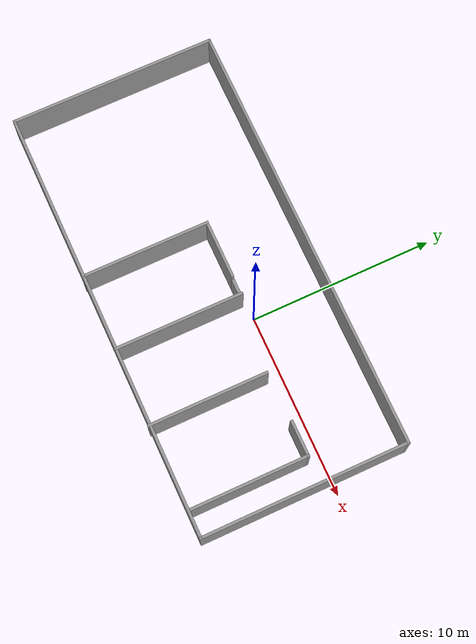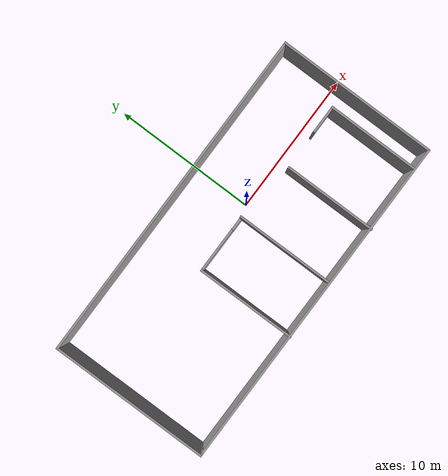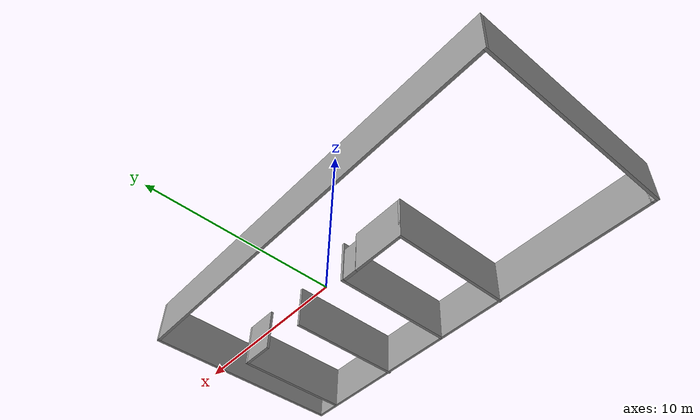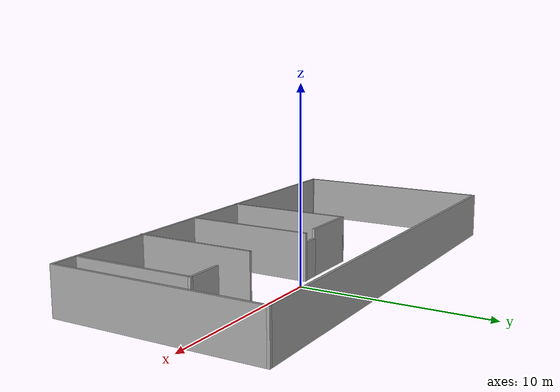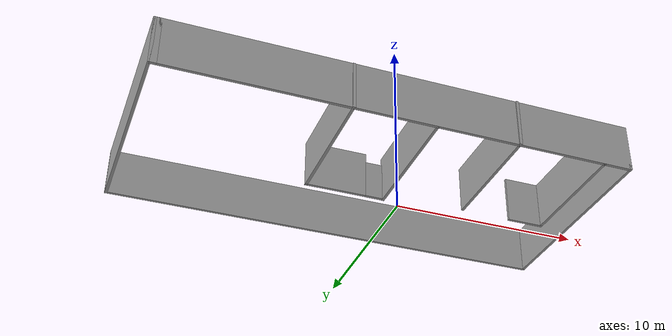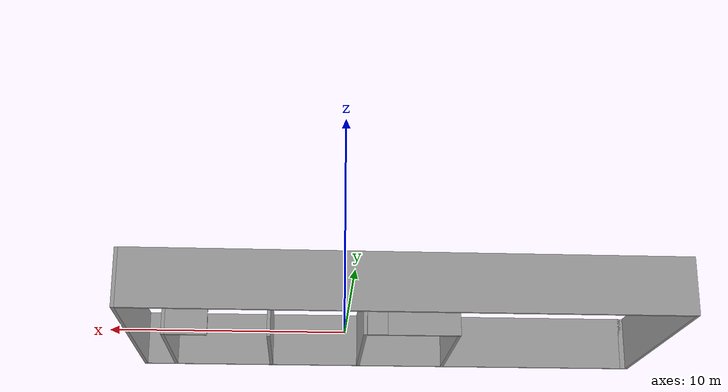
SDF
<?xml version='1.0'?>
<sdf version='1.7'>
  <model name='model1'>
    <pose>-2.44936 -1.61539 0 0 -0 0</pose>
    <link name='Door_2'>
      <collision name='Door_2_Collision'>
        <geometry>
          <box>
            <size>0.9 0.17 2</size>
          </box>
        </geometry>
        <pose>0 0 1 0 -0 0</pose>
      </collision>
      <visual name='Door_2_Visual'>
        <pose>0 0 1 0 -0 0</pose>
        <geometry>
          <box>
            <size>0.9 0.17 2</size>
          </box>
        </geometry>
        <material>
          <script>
            <uri>file://media/materials/scripts/gazebo.material</uri>
            <name>Gazebo/Grey</name>
          </script>
        </material>
      </visual>
      <pose>0.991994 1.30221 0 0 -0 0</pose>
    </link>
    <link name='Wall_23'>
      <collision name='Wall_23_Collision'>
        <geometry>
          <box>
            <size>23.5 0.15 2.5</size>
          </box>
        </geometry>
        <pose>0 0 1.25 0 -0 0</pose>
      </collision>
      <visual name='Wall_23_Visual'>
        <pose>0 0 1.25 0 -0 0</pose>
        <geometry>
          <box>
            <size>23.5 0.15 2.5</size>
          </box>
        </geometry>
        <material>
          <script>
            <uri>file://media/materials/scripts/gazebo.material</uri>
            <name>Gazebo/Grey</name>
          </script>
          <ambient>1 1 1 1</ambient>
        </material>
        <meta>
          <layer>0</layer>
        </meta>
      </visual>
      <pose>0.125 -5.51941 0 0 -0 0</pose>
    </link>
    <link name='Wall_24'>
      <collision name='Wall_24_Collision'>
        <geometry>
          <box>
            <size>11.25 0.15 2.5</size>
          </box>
        </geometry>
        <pose>0 0 1.25 0 -0 0</pose>
      </collision>
      <visual name='Wall_24_Visual'>
        <pose>0 0 1.25 0 -0 0</pose>
        <geometry>
          <box>
            <size>11.25 0.15 2.5</size>
          </box>
        </geometry>
        <material>
          <script>
            <uri>file://media/materials/scripts/gazebo.material</uri>
            <name>Gazebo/Grey</name>
          </script>
          <ambient>1 1 1 1</ambient>
        </material>
        <meta>
          <layer>0</layer>
        </meta>
      </visual>
      <pose>11.8 0.03059 0 0 -0 1.5708</pose>
    </link>
    <link name='Wall_25'>
      <collision name='Wall_25_Collision'>
        <geometry>
          <box>
            <size>23.75 0.15 2.5</size>
          </box>
        </geometry>
        <pose>0 0 1.25 0 -0 0</pose>
      </collision>
      <visual name='Wall_25_Visual'>
        <pose>0 0 1.25 0 -0 0</pose>
        <geometry>
          <box>
            <size>23.75 0.15 2.5</size>
          </box>
        </geometry>
        <material>
          <script>
            <uri>file://media/materials/scripts/gazebo.material</uri>
            <name>Gazebo/Grey</name>
          </script>
          <ambient>1 1 1 1</ambient>
        </material>
        <meta>
          <layer>0</layer>
        </meta>
      </visual>
      <pose>-0 5.58059 0 0 -0 3.14159</pose>
    </link>
    <link name='Wall_26'>
      <collision name='Wall_26_Collision'>
        <geometry>
          <box>
            <size>11.25 0.15 2.5</size>
          </box>
        </geometry>
        <pose>0 0 1.25 0 -0 0</pose>
      </collision>
      <visual name='Wall_26_Visual'>
        <pose>0 0 1.25 0 -0 0</pose>
        <geometry>
          <box>
            <size>11.25 0.15 2.5</size>
          </box>
        </geometry>
        <material>
          <script>
            <uri>file://media/materials/scripts/gazebo.material</uri>
            <name>Gazebo/Grey</name>
          </script>
          <ambient>1 1 1 1</ambient>
        </material>
        <meta>
          <layer>0</layer>
        </meta>
      </visual>
      <pose>-11.8 0.03059 0 0 -0 -1.5708</pose>
    </link>
    <link name='Wall_27'>
      <collision name='Wall_27_Collision'>
        <geometry>
          <box>
            <size>0.4 0.15 2.5</size>
          </box>
        </geometry>
        <pose>0 0 1.25 0 -0 0</pose>
      </collision>
      <visual name='Wall_27_Visual'>
        <pose>0 0 1.25 0 -0 0</pose>
        <geometry>
          <box>
            <size>0.4 0.15 2.5</size>
          </box>
        </geometry>
        <material>
          <script>
            <uri>file://media/materials/scripts/gazebo.material</uri>
            <name>Gazebo/Grey</name>
          </script>
          <ambient>1 1 1 1</ambient>
        </material>
        <meta>
          <layer>0</layer>
        </meta>
      </visual>
      <pose>-11.675 -5.51941 0 0 -0 0</pose>
    </link>
    <link name='Wall_29'>
      <collision name='Wall_29_Collision'>
        <geometry>
          <box>
            <size>7 0.15 2.5</size>
          </box>
        </geometry>
        <pose>0 0 1.25 0 -0 0</pose>
      </collision>
      <visual name='Wall_29_Visual'>
        <pose>0 0 1.25 0 -0 0</pose>
        <geometry>
          <box>
            <size>7 0.15 2.5</size>
          </box>
        </geometry>
        <material>
          <script>
            <uri>file://media/materials/scripts/gazebo.material</uri>
            <name>Gazebo/Grey</name>
          </script>
          <ambient>1 1 1 1</ambient>
        </material>
        <meta>
          <layer>0</layer>
        </meta>
      </visual>
      <pose>-2.58706 -2.125 0 0 -0 1.5708</pose>
    </link>
    <link name='Wall_30'>
      <collision name='Wall_30_Collision'>
        <geometry>
          <box>
            <size>3.25 0.15 2.5</size>
          </box>
        </geometry>
        <pose>0 0 1.25 0 -0 0</pose>
      </collision>
      <visual name='Wall_30_Visual'>
        <pose>0 0 1.25 0 -0 0</pose>
        <geometry>
          <box>
            <size>3.25 0.15 2.5</size>
          </box>
        </geometry>
        <material>
          <script>
            <uri>file://media/materials/scripts/gazebo.material</uri>
            <name>Gazebo/Grey</name>
          </script>
          <ambient>1 1 1 1</ambient>
        </material>
        <meta>
          <layer>0</layer>
        </meta>
      </visual>
      <pose>-1.03706 1.3 0 0 -0 0</pose>
    </link>
    <link name='Wall_33'>
      <collision name='Wall_33_Collision'>
        <geometry>
          <box>
            <size>7 0.15 2.5</size>
          </box>
        </geometry>
        <pose>0 0 1.25 0 -0 0</pose>
      </collision>
      <visual name='Wall_33_Visual'>
        <pose>0 0 1.25 0 -0 0</pose>
        <geometry>
          <box>
            <size>7 0.15 2.5</size>
          </box>
        </geometry>
        <material>
          <script>
            <uri>file://media/materials/scripts/gazebo.material</uri>
            <name>Gazebo/Grey</name>
          </script>
          <ambient>1 1 1 1</ambient>
        </material>
        <meta>
          <layer>0</layer>
        </meta>
      </visual>
      <pose>1.54262 -2.0922 0 0 -0 -1.5708</pose>
    </link>
    <link name='Wall_39'>
      <collision name='Wall_39_Collision'>
        <geometry>
          <box>
            <size>6.5 0.15 2.5</size>
          </box>
        </geometry>
        <pose>0 0 1.25 0 -0 0</pose>
      </collision>
      <visual name='Wall_39_Visual'>
        <pose>0 0 1.25 0 -0 0</pose>
        <geometry>
          <box>
            <size>6.5 0.15 2.5</size>
          </box>
        </geometry>
        <material>
          <script>
            <uri>file://media/materials/scripts/gazebo.material</uri>
            <name>Gazebo/Grey</name>
          </script>
          <ambient>1 1 1 1</ambient>
        </material>
        <meta>
          <layer>0</layer>
        </meta>
      </visual>
      <pose>5.76407 -2.40559 0 0 -0 1.5708</pose>
    </link>
    <link name='Wall_41'>
      <collision name='Wall_41_Collision'>
        <geometry>
          <box>
            <size>6.5 0.15 2.5</size>
          </box>
        </geometry>
        <pose>0 0 1.25 0 -0 0</pose>
      </collision>
      <visual name='Wall_41_Visual'>
        <pose>0 0 1.25 0 -0 0</pose>
        <geometry>
          <box>
            <size>6.5 0.15 2.5</size>
          </box>
        </geometry>
        <material>
          <script>
            <uri>file://media/materials/scripts/gazebo.material</uri>
            <name>Gazebo/Grey</name>
          </script>
          <ambient>1 1 1 1</ambient>
        </material>
        <meta>
          <layer>0</layer>
        </meta>
      </visual>
      <pose>10.3526 -2.31382 0 0 -0 1.5708</pose>
    </link>
    <link name='Wall_43'>
      <collision name='Wall_43_Collision'>
        <geometry>
          <box>
            <size>2 0.15 2.5</size>
          </box>
        </geometry>
        <pose>0 0 1.25 0 -0 0</pose>
      </collision>
      <visual name='Wall_43_Visual'>
        <pose>0 0 1.25 0 -0 0</pose>
        <geometry>
          <box>
            <size>2 0.15 2.5</size>
          </box>
        </geometry>
        <material>
          <script>
            <uri>file://media/materials/scripts/gazebo.material</uri>
            <name>Gazebo/Grey</name>
          </script>
          <ambient>1 1 1 1</ambient>
        </material>
        <meta>
          <layer>0</layer>
        </meta>
      </visual>
      <pose>9.4276 0.86118 0 0 -0 3.14159</pose>
    </link>
    <static>1</static>
  </model>
</sdf>
